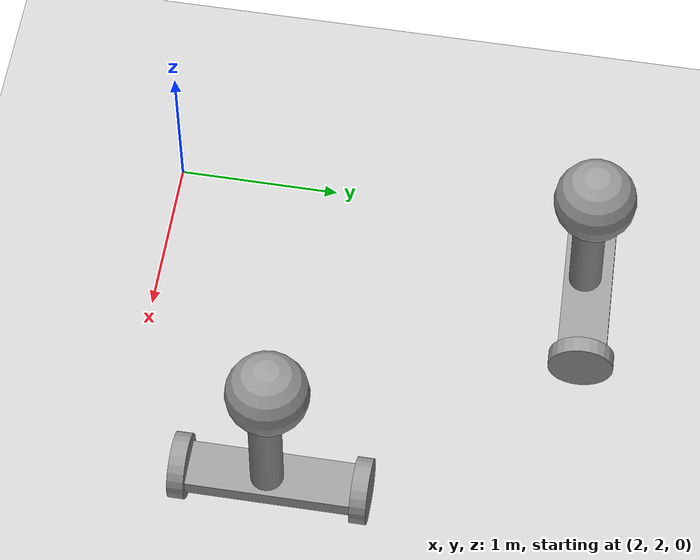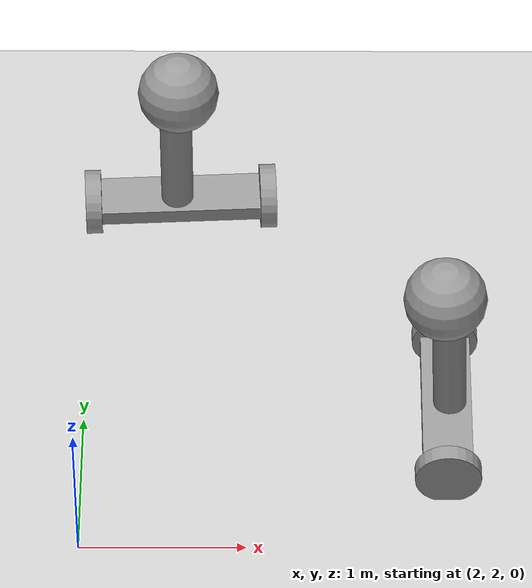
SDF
<sdf version="1.6">
 <world name="default">
  <model name="ground_plane">
   <static>1</static>
   <link name="link">
    <collision name="collision">
     <geometry><plane><normal>0 0 1</normal><size>100 100</size></plane></geometry>
     <surface>
      <contact><collide_bitmask>65535</collide_bitmask></contact>
      <friction><ode><mu>100</mu><mu2>50</mu2></ode></friction>
     </surface>
    </collision>
    <visual name="visual">
     <cast_shadows>0</cast_shadows>
     <geometry><plane><normal>0 0 1</normal><size>100 100</size></plane></geometry>
     <material>
      <script><uri>file://media/materials/scripts/gazebo.material</uri><name>Gazebo/Grey</name></script>
     </material>
    </visual>
   </link>
  </model>
  <model name="robot">
   <link name="link_0">
    <inertial>
     <mass>1</mass>
     <inertia>
      <ixx>0.166667</ixx>
      <ixy>0</ixy>
      <ixz>0</ixz>
      <iyy>0.166667</iyy>
      <iyz>0</iyz>
      <izz>0.166667</izz>
     </inertia>
    </inertial>
    <visual name="visual">
     <geometry><box><size>0.3 1 0.1</size></box></geometry>
     <material>
      <lighting>1</lighting>
      <script><uri>file://media/materials/scripts/gazebo.material</uri><name>Gazebo/Grey</name></script>
      <shader type="pixel"><normal_map>__default__</normal_map></shader>
      <ambient>0.3 0.3 0.3 1</ambient>
      <diffuse>0.7 0.7 0.7 1</diffuse>
      <specular>0.01 0.01 0.01 1</specular>
      <emissive>0 0 0 1</emissive>
     </material>
    </visual>
    <collision name="collision">
     <geometry><box><size>0.3 1 0.1</size></box></geometry>
     <surface>
      <friction>
       <ode><mu>1</mu><mu2>1</mu2><fdir1>0 0 0</fdir1><slip1>0</slip1><slip2>0</slip2></ode>
       <torsional>
        <coefficient>1</coefficient>
        <patch_radius>0</patch_radius>
        <surface_radius>0</surface_radius>
        <use_patch_radius>1</use_patch_radius>
        <ode><slip>0</slip></ode>
       </torsional>
      </friction>
      <bounce><restitution_coefficient>0</restitution_coefficient><threshold>1e+06</threshold></bounce>
      <contact>
       <collide_without_contact>0</collide_without_contact>
       <collide_without_contact_bitmask>1</collide_without_contact_bitmask>
       <collide_bitmask>1</collide_bitmask>
       <ode>
        <soft_cfm>0</soft_cfm>
        <soft_erp>0.2</soft_erp>
        <kp>1e+13</kp>
        <kd>1</kd>
        <max_vel>0.01</max_vel>
        <min_depth>0</min_depth>
       </ode>
       <bullet>
        <split_impulse>1</split_impulse>
        <split_impulse_penetration_threshold>-0.01</split_impulse_penetration_threshold>
        <soft_cfm>0</soft_cfm>
        <soft_erp>0.2</soft_erp>
        <kp>1e+13</kp>
        <kd>1</kd>
       </bullet>
      </contact>
     </surface>
    </collision>
   </link>
   <link name="link_0_0">
    <pose>0.005679 -0.021002 0.445491 -0.033094 -0.001703 1.51939</pose>
    <inertial>
     <mass>1</mass>
     <inertia><ixx>0.145833</ixx><ixy>0</ixy><ixz>0</ixz><iyy>0.145833</iyy><iyz>0</iyz><izz>0.125</izz></inertia>
    </inertial>
    <visual name="visual">
     <geometry><cylinder><radius>0.1</radius><length>1</length></cylinder></geometry>
     <material>
      <lighting>1</lighting>
      <script><uri>file://media/materials/scripts/gazebo.material</uri><name>Gazebo/Grey</name></script>
      <shader type="pixel"><normal_map>__default__</normal_map></shader>
      <ambient>0.3 0.3 0.3 1</ambient>
      <diffuse>0.7 0.7 0.7 1</diffuse>
      <specular>0.01 0.01 0.01 1</specular>
      <emissive>0 0 0 1</emissive>
     </material>
    </visual>
    <collision name="collision">
     <geometry><cylinder><radius>0.1</radius><length>1</length></cylinder></geometry>
     <surface>
      <friction>
       <ode><mu>1</mu><mu2>1</mu2><fdir1>0 0 0</fdir1><slip1>0</slip1><slip2>0</slip2></ode>
       <torsional>
        <coefficient>1</coefficient>
        <patch_radius>0</patch_radius>
        <surface_radius>0</surface_radius>
        <use_patch_radius>1</use_patch_radius>
        <ode><slip>0</slip></ode>
       </torsional>
      </friction>
      <bounce><restitution_coefficient>0</restitution_coefficient><threshold>1e+06</threshold></bounce>
      <contact>
       <collide_without_contact>0</collide_without_contact>
       <collide_without_contact_bitmask>1</collide_without_contact_bitmask>
       <collide_bitmask>1</collide_bitmask>
       <ode>
        <soft_cfm>0</soft_cfm>
        <soft_erp>0.2</soft_erp>
        <kp>1e+13</kp>
        <kd>1</kd>
        <max_vel>0.01</max_vel>
        <min_depth>0</min_depth>
       </ode>
       <bullet>
        <split_impulse>1</split_impulse>
        <split_impulse_penetration_threshold>-0.01</split_impulse_penetration_threshold>
        <soft_cfm>0</soft_cfm>
        <soft_erp>0.2</soft_erp>
        <kp>1e+13</kp>
        <kd>1</kd>
       </bullet>
      </contact>
     </surface>
    </collision>
   </link>
   <link name="link_1">
    <pose>-0 -0.550019 -0 1.5707 -0 0</pose>
    <inertial>
     <mass>1</mass>
     <inertia><ixx>0.145833</ixx><ixy>0</ixy><ixz>0</ixz><iyy>0.145833</iyy><iyz>0</iyz><izz>0.125</izz></inertia>
    </inertial>
    <visual name="visual">
     <geometry><cylinder><radius>0.2</radius><length>0.1</length></cylinder></geometry>
     <material>
      <lighting>1</lighting>
      <script><uri>file://media/materials/scripts/gazebo.material</uri><name>Gazebo/Grey</name></script>
      <shader type="pixel"><normal_map>__default__</normal_map></shader>
      <ambient>0.3 0.3 0.3 1</ambient>
      <diffuse>0.7 0.7 0.7 1</diffuse>
      <specular>0.01 0.01 0.01 1</specular>
      <emissive>0 0 0 1</emissive>
     </material>
    </visual>
    <collision name="collision">
     <geometry><cylinder><radius>0.2</radius><length>0.1</length></cylinder></geometry>
     <surface>
      <friction>
       <ode><mu>1</mu><mu2>1</mu2><fdir1>0 0 0</fdir1><slip1>0</slip1><slip2>0</slip2></ode>
       <torsional>
        <coefficient>1</coefficient>
        <patch_radius>0</patch_radius>
        <surface_radius>0</surface_radius>
        <use_patch_radius>1</use_patch_radius>
        <ode><slip>0</slip></ode>
       </torsional>
      </friction>
      <bounce><restitution_coefficient>0</restitution_coefficient><threshold>1e+06</threshold></bounce>
      <contact>
       <collide_without_contact>0</collide_without_contact>
       <collide_without_contact_bitmask>1</collide_without_contact_bitmask>
       <collide_bitmask>1</collide_bitmask>
       <ode>
        <soft_cfm>0</soft_cfm>
        <soft_erp>0.2</soft_erp>
        <kp>1e+13</kp>
        <kd>1</kd>
        <max_vel>0.01</max_vel>
        <min_depth>0</min_depth>
       </ode>
       <bullet>
        <split_impulse>1</split_impulse>
        <split_impulse_penetration_threshold>-0.01</split_impulse_penetration_threshold>
        <soft_cfm>0</soft_cfm>
        <soft_erp>0.2</soft_erp>
        <kp>1e+13</kp>
        <kd>1</kd>
       </bullet>
      </contact>
     </surface>
    </collision>
   </link>
   <link name="link_1_clone">
    <pose>0 0.550019 0 1.5707 -0 0</pose>
    <inertial>
     <mass>1</mass>
     <inertia><ixx>0.145833</ixx><ixy>0</ixy><ixz>0</ixz><iyy>0.145833</iyy><iyz>0</iyz><izz>0.125</izz></inertia>
    </inertial>
    <visual name="visual">
     <geometry><cylinder><radius>0.2</radius><length>0.1</length></cylinder></geometry>
     <material>
      <lighting>1</lighting>
      <script><uri>file://media/materials/scripts/gazebo.material</uri><name>Gazebo/Grey</name></script>
      <shader type="pixel"><normal_map>__default__</normal_map></shader>
      <ambient>0.3 0.3 0.3 1</ambient>
      <diffuse>0.7 0.7 0.7 1</diffuse>
      <specular>0.01 0.01 0.01 1</specular>
      <emissive>0 0 0 1</emissive>
     </material>
    </visual>
    <collision name="collision">
     <geometry><cylinder><radius>0.2</radius><length>0.1</length></cylinder></geometry>
     <surface>
      <friction>
       <ode><mu>1</mu><mu2>1</mu2><fdir1>0 0 0</fdir1><slip1>0</slip1><slip2>0</slip2></ode>
       <torsional>
        <coefficient>1</coefficient>
        <patch_radius>0</patch_radius>
        <surface_radius>0</surface_radius>
        <use_patch_radius>1</use_patch_radius>
        <ode><slip>0</slip></ode>
       </torsional>
      </friction>
      <bounce><restitution_coefficient>0</restitution_coefficient><threshold>1e+06</threshold></bounce>
      <contact>
       <collide_without_contact>0</collide_without_contact>
       <collide_without_contact_bitmask>1</collide_without_contact_bitmask>
       <collide_bitmask>1</collide_bitmask>
       <ode>
        <soft_cfm>0</soft_cfm>
        <soft_erp>0.2</soft_erp>
        <kp>1e+13</kp>
        <kd>1</kd>
        <max_vel>0.01</max_vel>
        <min_depth>0</min_depth>
       </ode>
       <bullet>
        <split_impulse>1</split_impulse>
        <split_impulse_penetration_threshold>-0.01</split_impulse_penetration_threshold>
        <soft_cfm>0</soft_cfm>
        <soft_erp>0.2</soft_erp>
        <kp>1e+13</kp>
        <kd>1</kd>
       </bullet>
      </contact>
     </surface>
    </collision>
   </link>
   <link name="link_2">
    <pose>-0.029822 0 0.944589 -0.033094 -0.001703 1.51939</pose>
    <inertial>
     <mass>1</mass>
     <inertia><ixx>0.1</ixx><ixy>0</ixy><ixz>0</ixz><iyy>0.1</iyy><iyz>0</iyz><izz>0.1</izz></inertia>
    </inertial>
    <visual name="visual">
     <geometry><sphere><radius>0.25</radius></sphere></geometry>
     <material>
      <lighting>1</lighting>
      <script><uri>file://media/materials/scripts/gazebo.material</uri><name>Gazebo/Grey</name></script>
      <shader type="pixel"><normal_map>__default__</normal_map></shader>
      <ambient>0.3 0.3 0.3 1</ambient>
      <diffuse>0.7 0.7 0.7 1</diffuse>
      <specular>0.01 0.01 0.01 1</specular>
      <emissive>0 0 0 1</emissive>
     </material>
    </visual>
    <collision name="collision">
     <geometry><sphere><radius>0.25</radius></sphere></geometry>
     <surface>
      <friction>
       <ode><mu>1</mu><mu2>1</mu2><fdir1>0 0 0</fdir1><slip1>0</slip1><slip2>0</slip2></ode>
       <torsional>
        <coefficient>1</coefficient>
        <patch_radius>0</patch_radius>
        <surface_radius>0</surface_radius>
        <use_patch_radius>1</use_patch_radius>
        <ode><slip>0</slip></ode>
       </torsional>
      </friction>
      <bounce><restitution_coefficient>0</restitution_coefficient><threshold>1e+06</threshold></bounce>
      <contact>
       <collide_without_contact>0</collide_without_contact>
       <collide_without_contact_bitmask>1</collide_without_contact_bitmask>
       <collide_bitmask>1</collide_bitmask>
       <ode>
        <soft_cfm>0</soft_cfm>
        <soft_erp>0.2</soft_erp>
        <kp>1e+13</kp>
        <kd>1</kd>
        <max_vel>0.01</max_vel>
        <min_depth>0</min_depth>
       </ode>
       <bullet>
        <split_impulse>1</split_impulse>
        <split_impulse_penetration_threshold>-0.01</split_impulse_penetration_threshold>
        <soft_cfm>0</soft_cfm>
        <soft_erp>0.2</soft_erp>
        <kp>1e+13</kp>
        <kd>1</kd>
       </bullet>
      </contact>
     </surface>
    </collision>
   </link>
   <joint name="link_0_0_JOINT_2" type="fixed">
    <parent>link_0_0</parent>
    <child>link_2</child>
    <physics>
     <ode><limit><cfm>0</cfm><erp>0.2</erp></limit><suspension><cfm>0</cfm><erp>0.2</erp></suspension></ode>
    </physics>
   </joint>
   <joint name="link_0_JOINT_1" type="fixed">
    <parent>link_0</parent>
    <child>link_0_0</child>
    <physics>
     <ode><limit><cfm>0</cfm><erp>0.2</erp></limit><suspension><cfm>0</cfm><erp>0.2</erp></suspension></ode>
    </physics>
   </joint>
   <joint name="link_0_JOINT_2" type="revolute">
    <parent>link_0</parent>
    <child>link_1_clone</child>
    <axis>
     <xyz>0 0 1</xyz>
     <use_parent_model_frame>0</use_parent_model_frame>
     <limit>
      <lower>-1.79769e+308</lower>
      <upper>1.79769e+308</upper>
      <effort>-1</effort>
      <velocity>-1</velocity>
     </limit>
     <dynamics>
      <spring_reference>0</spring_reference>
      <spring_stiffness>0</spring_stiffness>
      <damping>0</damping>
      <friction>0</friction>
     </dynamics>
    </axis>
    <physics>
     <ode><limit><cfm>0</cfm><erp>0.2</erp></limit><suspension><cfm>0</cfm><erp>0.2</erp></suspension></ode>
    </physics>
   </joint>
   <joint name="link_0_JOINT_3" type="revolute">
    <parent>link_0</parent>
    <child>link_1</child>
    <axis>
     <xyz>0 0 1</xyz>
     <use_parent_model_frame>0</use_parent_model_frame>
     <limit>
      <lower>-1.79769e+308</lower>
      <upper>1.79769e+308</upper>
      <effort>-1</effort>
      <velocity>-1</velocity>
     </limit>
     <dynamics>
      <spring_reference>0</spring_reference>
      <spring_stiffness>0</spring_stiffness>
      <damping>0</damping>
      <friction>0</friction>
     </dynamics>
    </axis>
    <physics>
     <ode><limit><cfm>0</cfm><erp>0.2</erp></limit><suspension><cfm>0</cfm><erp>0.2</erp></suspension></ode>
    </physics>
   </joint>
   <static>0</static>
   <pose>2.56498 4.67501 0.200005 0 0.033138 -1.51936</pose>
  </model>
  <model name="robot_0">
   <link name="link_0">
    <inertial>
     <mass>1</mass>
     <inertia>
      <ixx>0.166667</ixx>
      <ixy>0</ixy>
      <ixz>0</ixz>
      <iyy>0.166667</iyy>
      <iyz>0</iyz>
      <izz>0.166667</izz>
     </inertia>
    </inertial>
    <visual name="visual">
     <geometry><box><size>0.3 1 0.1</size></box></geometry>
     <material>
      <lighting>1</lighting>
      <script><uri>file://media/materials/scripts/gazebo.material</uri><name>Gazebo/Grey</name></script>
      <shader type="pixel"><normal_map>__default__</normal_map></shader>
      <ambient>0.3 0.3 0.3 1</ambient>
      <diffuse>0.7 0.7 0.7 1</diffuse>
      <specular>0.01 0.01 0.01 1</specular>
      <emissive>0 0 0 1</emissive>
     </material>
    </visual>
    <collision name="collision">
     <geometry><box><size>0.3 1 0.1</size></box></geometry>
     <surface>
      <friction>
       <ode><mu>1</mu><mu2>1</mu2><fdir1>0 0 0</fdir1><slip1>0</slip1><slip2>0</slip2></ode>
       <torsional>
        <coefficient>1</coefficient>
        <patch_radius>0</patch_radius>
        <surface_radius>0</surface_radius>
        <use_patch_radius>1</use_patch_radius>
        <ode><slip>0</slip></ode>
       </torsional>
      </friction>
      <bounce><restitution_coefficient>0</restitution_coefficient><threshold>1e+06</threshold></bounce>
      <contact>
       <collide_without_contact>0</collide_without_contact>
       <collide_without_contact_bitmask>1</collide_without_contact_bitmask>
       <collide_bitmask>1</collide_bitmask>
       <ode>
        <soft_cfm>0</soft_cfm>
        <soft_erp>0.2</soft_erp>
        <kp>1e+13</kp>
        <kd>1</kd>
        <max_vel>0.01</max_vel>
        <min_depth>0</min_depth>
       </ode>
       <bullet>
        <split_impulse>1</split_impulse>
        <split_impulse_penetration_threshold>-0.01</split_impulse_penetration_threshold>
        <soft_cfm>0</soft_cfm>
        <soft_erp>0.2</soft_erp>
        <kp>1e+13</kp>
        <kd>1</kd>
       </bullet>
      </contact>
     </surface>
    </collision>
   </link>
   <link name="link_0_0">
    <pose>0.005679 -0.021002 0.445491 -0.033094 -0.001703 1.51939</pose>
    <inertial>
     <mass>1</mass>
     <inertia><ixx>0.145833</ixx><ixy>0</ixy><ixz>0</ixz><iyy>0.145833</iyy><iyz>0</iyz><izz>0.125</izz></inertia>
    </inertial>
    <visual name="visual">
     <geometry><cylinder><radius>0.1</radius><length>1</length></cylinder></geometry>
     <material>
      <lighting>1</lighting>
      <script><uri>file://media/materials/scripts/gazebo.material</uri><name>Gazebo/Grey</name></script>
      <shader type="pixel"><normal_map>__default__</normal_map></shader>
      <ambient>0.3 0.3 0.3 1</ambient>
      <diffuse>0.7 0.7 0.7 1</diffuse>
      <specular>0.01 0.01 0.01 1</specular>
      <emissive>0 0 0 1</emissive>
     </material>
    </visual>
    <collision name="collision">
     <geometry><cylinder><radius>0.1</radius><length>1</length></cylinder></geometry>
     <surface>
      <friction>
       <ode><mu>1</mu><mu2>1</mu2><fdir1>0 0 0</fdir1><slip1>0</slip1><slip2>0</slip2></ode>
       <torsional>
        <coefficient>1</coefficient>
        <patch_radius>0</patch_radius>
        <surface_radius>0</surface_radius>
        <use_patch_radius>1</use_patch_radius>
        <ode><slip>0</slip></ode>
       </torsional>
      </friction>
      <bounce><restitution_coefficient>0</restitution_coefficient><threshold>1e+06</threshold></bounce>
      <contact>
       <collide_without_contact>0</collide_without_contact>
       <collide_without_contact_bitmask>1</collide_without_contact_bitmask>
       <collide_bitmask>1</collide_bitmask>
       <ode>
        <soft_cfm>0</soft_cfm>
        <soft_erp>0.2</soft_erp>
        <kp>1e+13</kp>
        <kd>1</kd>
        <max_vel>0.01</max_vel>
        <min_depth>0</min_depth>
       </ode>
       <bullet>
        <split_impulse>1</split_impulse>
        <split_impulse_penetration_threshold>-0.01</split_impulse_penetration_threshold>
        <soft_cfm>0</soft_cfm>
        <soft_erp>0.2</soft_erp>
        <kp>1e+13</kp>
        <kd>1</kd>
       </bullet>
      </contact>
     </surface>
    </collision>
   </link>
   <link name="link_1">
    <pose>-0 -0.550019 -0 1.5707 -0 0</pose>
    <inertial>
     <mass>1</mass>
     <inertia><ixx>0.145833</ixx><ixy>0</ixy><ixz>0</ixz><iyy>0.145833</iyy><iyz>0</iyz><izz>0.125</izz></inertia>
    </inertial>
    <visual name="visual">
     <geometry><cylinder><radius>0.2</radius><length>0.1</length></cylinder></geometry>
     <material>
      <lighting>1</lighting>
      <script><uri>file://media/materials/scripts/gazebo.material</uri><name>Gazebo/Grey</name></script>
      <shader type="pixel"><normal_map>__default__</normal_map></shader>
      <ambient>0.3 0.3 0.3 1</ambient>
      <diffuse>0.7 0.7 0.7 1</diffuse>
      <specular>0.01 0.01 0.01 1</specular>
      <emissive>0 0 0 1</emissive>
     </material>
    </visual>
    <collision name="collision">
     <geometry><cylinder><radius>0.2</radius><length>0.1</length></cylinder></geometry>
     <surface>
      <friction>
       <ode><mu>1</mu><mu2>1</mu2><fdir1>0 0 0</fdir1><slip1>0</slip1><slip2>0</slip2></ode>
       <torsional>
        <coefficient>1</coefficient>
        <patch_radius>0</patch_radius>
        <surface_radius>0</surface_radius>
        <use_patch_radius>1</use_patch_radius>
        <ode><slip>0</slip></ode>
       </torsional>
      </friction>
      <bounce><restitution_coefficient>0</restitution_coefficient><threshold>1e+06</threshold></bounce>
      <contact>
       <collide_without_contact>0</collide_without_contact>
       <collide_without_contact_bitmask>1</collide_without_contact_bitmask>
       <collide_bitmask>1</collide_bitmask>
       <ode>
        <soft_cfm>0</soft_cfm>
        <soft_erp>0.2</soft_erp>
        <kp>1e+13</kp>
        <kd>1</kd>
        <max_vel>0.01</max_vel>
        <min_depth>0</min_depth>
       </ode>
       <bullet>
        <split_impulse>1</split_impulse>
        <split_impulse_penetration_threshold>-0.01</split_impulse_penetration_threshold>
        <soft_cfm>0</soft_cfm>
        <soft_erp>0.2</soft_erp>
        <kp>1e+13</kp>
        <kd>1</kd>
       </bullet>
      </contact>
     </surface>
    </collision>
   </link>
   <link name="link_1_clone">
    <pose>0 0.550019 0 1.5707 -0 0</pose>
    <inertial>
     <mass>1</mass>
     <inertia><ixx>0.145833</ixx><ixy>0</ixy><ixz>0</ixz><iyy>0.145833</iyy><iyz>0</iyz><izz>0.125</izz></inertia>
    </inertial>
    <visual name="visual">
     <geometry><cylinder><radius>0.2</radius><length>0.1</length></cylinder></geometry>
     <material>
      <lighting>1</lighting>
      <script><uri>file://media/materials/scripts/gazebo.material</uri><name>Gazebo/Grey</name></script>
      <shader type="pixel"><normal_map>__default__</normal_map></shader>
      <ambient>0.3 0.3 0.3 1</ambient>
      <diffuse>0.7 0.7 0.7 1</diffuse>
      <specular>0.01 0.01 0.01 1</specular>
      <emissive>0 0 0 1</emissive>
     </material>
    </visual>
    <collision name="collision">
     <geometry><cylinder><radius>0.2</radius><length>0.1</length></cylinder></geometry>
     <surface>
      <friction>
       <ode><mu>1</mu><mu2>1</mu2><fdir1>0 0 0</fdir1><slip1>0</slip1><slip2>0</slip2></ode>
       <torsional>
        <coefficient>1</coefficient>
        <patch_radius>0</patch_radius>
        <surface_radius>0</surface_radius>
        <use_patch_radius>1</use_patch_radius>
        <ode><slip>0</slip></ode>
       </torsional>
      </friction>
      <bounce><restitution_coefficient>0</restitution_coefficient><threshold>1e+06</threshold></bounce>
      <contact>
       <collide_without_contact>0</collide_without_contact>
       <collide_without_contact_bitmask>1</collide_without_contact_bitmask>
       <collide_bitmask>1</collide_bitmask>
       <ode>
        <soft_cfm>0</soft_cfm>
        <soft_erp>0.2</soft_erp>
        <kp>1e+13</kp>
        <kd>1</kd>
        <max_vel>0.01</max_vel>
        <min_depth>0</min_depth>
       </ode>
       <bullet>
        <split_impulse>1</split_impulse>
        <split_impulse_penetration_threshold>-0.01</split_impulse_penetration_threshold>
        <soft_cfm>0</soft_cfm>
        <soft_erp>0.2</soft_erp>
        <kp>1e+13</kp>
        <kd>1</kd>
       </bullet>
      </contact>
     </surface>
    </collision>
   </link>
   <link name="link_2">
    <pose>-0.029822 0 0.944589 -0.033094 -0.001703 1.51939</pose>
    <inertial>
     <mass>1</mass>
     <inertia><ixx>0.1</ixx><ixy>0</ixy><ixz>0</ixz><iyy>0.1</iyy><iyz>0</iyz><izz>0.1</izz></inertia>
    </inertial>
    <visual name="visual">
     <geometry><sphere><radius>0.25</radius></sphere></geometry>
     <material>
      <lighting>1</lighting>
      <script><uri>file://media/materials/scripts/gazebo.material</uri><name>Gazebo/Grey</name></script>
      <shader type="pixel"><normal_map>__default__</normal_map></shader>
      <ambient>0.3 0.3 0.3 1</ambient>
      <diffuse>0.7 0.7 0.7 1</diffuse>
      <specular>0.01 0.01 0.01 1</specular>
      <emissive>0 0 0 1</emissive>
     </material>
    </visual>
    <collision name="collision">
     <geometry><sphere><radius>0.25</radius></sphere></geometry>
     <surface>
      <friction>
       <ode><mu>1</mu><mu2>1</mu2><fdir1>0 0 0</fdir1><slip1>0</slip1><slip2>0</slip2></ode>
       <torsional>
        <coefficient>1</coefficient>
        <patch_radius>0</patch_radius>
        <surface_radius>0</surface_radius>
        <use_patch_radius>1</use_patch_radius>
        <ode><slip>0</slip></ode>
       </torsional>
      </friction>
      <bounce><restitution_coefficient>0</restitution_coefficient><threshold>1e+06</threshold></bounce>
      <contact>
       <collide_without_contact>0</collide_without_contact>
       <collide_without_contact_bitmask>1</collide_without_contact_bitmask>
       <collide_bitmask>1</collide_bitmask>
       <ode>
        <soft_cfm>0</soft_cfm>
        <soft_erp>0.2</soft_erp>
        <kp>1e+13</kp>
        <kd>1</kd>
        <max_vel>0.01</max_vel>
        <min_depth>0</min_depth>
       </ode>
       <bullet>
        <split_impulse>1</split_impulse>
        <split_impulse_penetration_threshold>-0.01</split_impulse_penetration_threshold>
        <soft_cfm>0</soft_cfm>
        <soft_erp>0.2</soft_erp>
        <kp>1e+13</kp>
        <kd>1</kd>
       </bullet>
      </contact>
     </surface>
    </collision>
   </link>
   <joint name="link_0_0_JOINT_2" type="fixed">
    <parent>link_0_0</parent>
    <child>link_2</child>
    <physics>
     <ode><limit><cfm>0</cfm><erp>0.2</erp></limit><suspension><cfm>0</cfm><erp>0.2</erp></suspension></ode>
    </physics>
   </joint>
   <joint name="link_0_JOINT_1" type="fixed">
    <parent>link_0</parent>
    <child>link_0_0</child>
    <physics>
     <ode><limit><cfm>0</cfm><erp>0.2</erp></limit><suspension><cfm>0</cfm><erp>0.2</erp></suspension></ode>
    </physics>
   </joint>
   <joint name="link_0_JOINT_2" type="revolute">
    <parent>link_0</parent>
    <child>link_1_clone</child>
    <axis>
     <xyz>0 0 1</xyz>
     <use_parent_model_frame>0</use_parent_model_frame>
     <limit>
      <lower>-1.79769e+308</lower>
      <upper>1.79769e+308</upper>
      <effort>-1</effort>
      <velocity>-1</velocity>
     </limit>
     <dynamics>
      <spring_reference>0</spring_reference>
      <spring_stiffness>0</spring_stiffness>
      <damping>0</damping>
      <friction>0</friction>
     </dynamics>
    </axis>
    <physics>
     <ode><limit><cfm>0</cfm><erp>0.2</erp></limit><suspension><cfm>0</cfm><erp>0.2</erp></suspension></ode>
    </physics>
   </joint>
   <joint name="link_0_JOINT_3" type="revolute">
    <parent>link_0</parent>
    <child>link_1</child>
    <axis>
     <xyz>0 0 1</xyz>
     <use_parent_model_frame>0</use_parent_model_frame>
     <limit>
      <lower>-1.79769e+308</lower>
      <upper>1.79769e+308</upper>
      <effort>-1</effort>
      <velocity>-1</velocity>
     </limit>
     <dynamics>
      <spring_reference>0</spring_reference>
      <spring_stiffness>0</spring_stiffness>
      <damping>0</damping>
      <friction>0</friction>
     </dynamics>
    </axis>
    <physics>
     <ode><limit><cfm>0</cfm><erp>0.2</erp></limit><suspension><cfm>0</cfm><erp>0.2</erp></suspension></ode>
    </physics>
   </joint>
   <static>0</static>
   <pose>4.20544 2.97785 0.178738 0 -0 0</pose>
  </model>
 </world>
</sdf>
